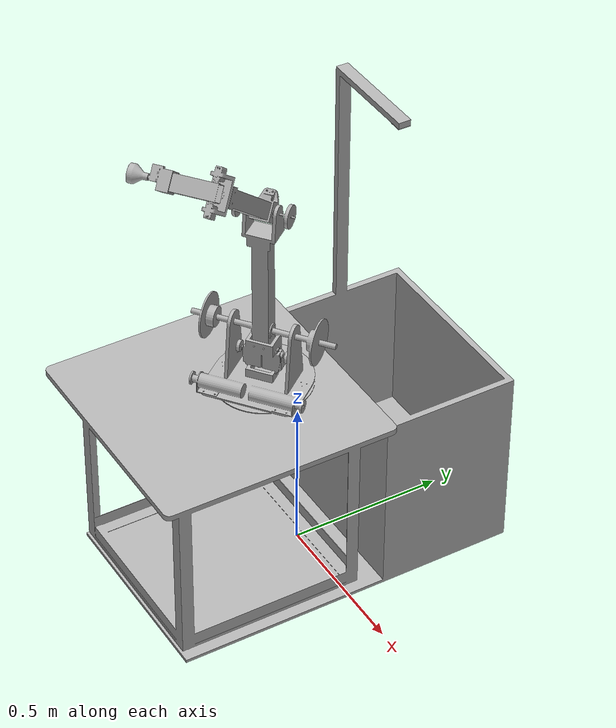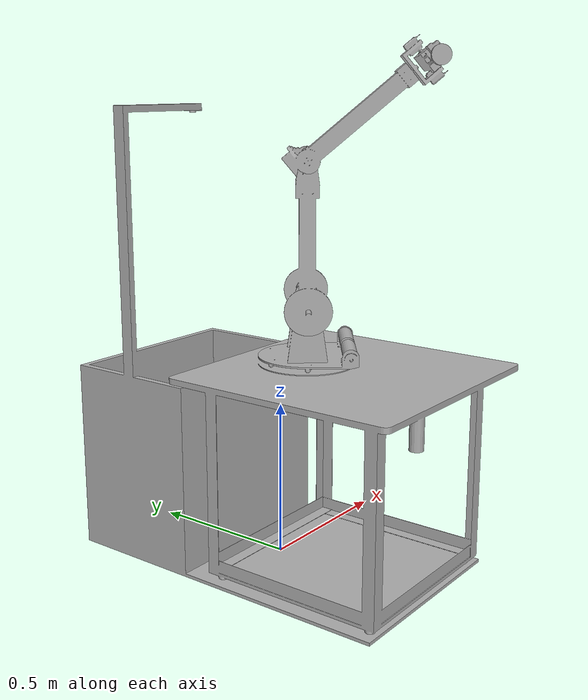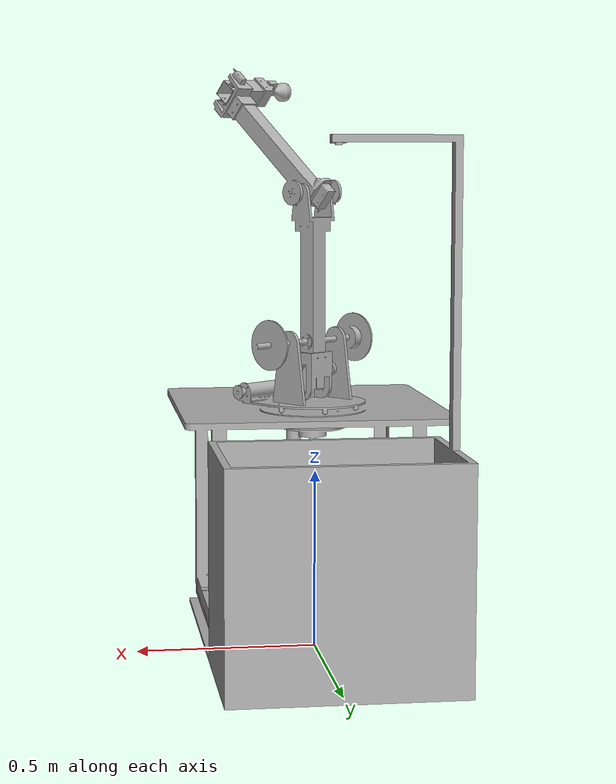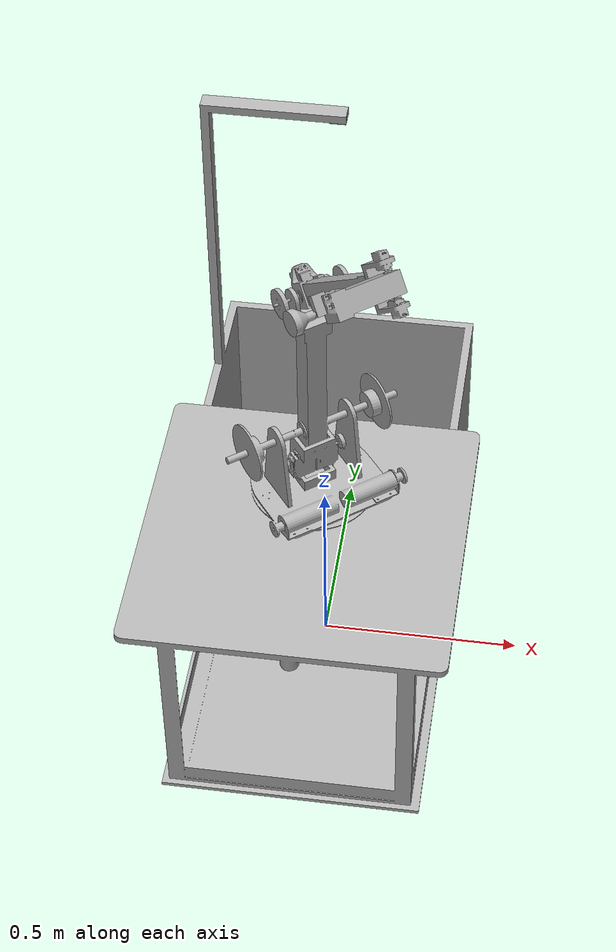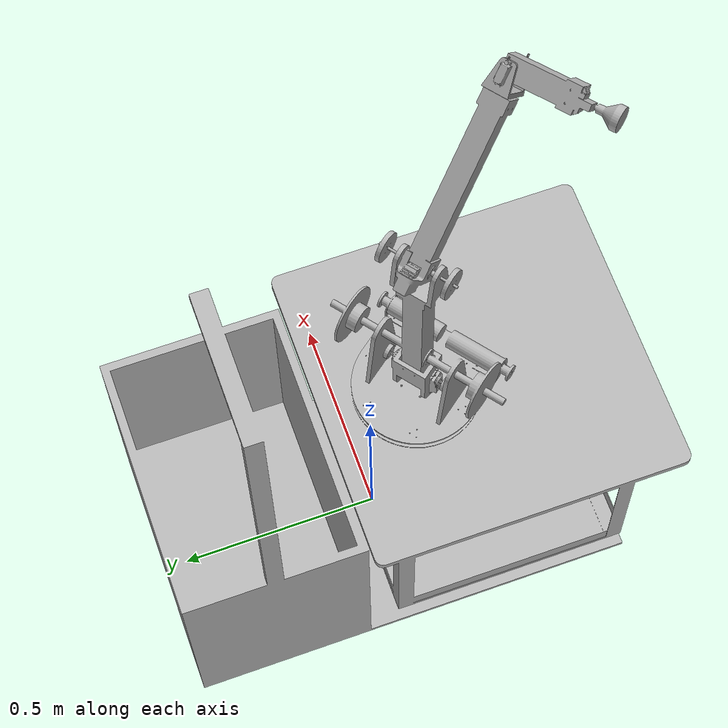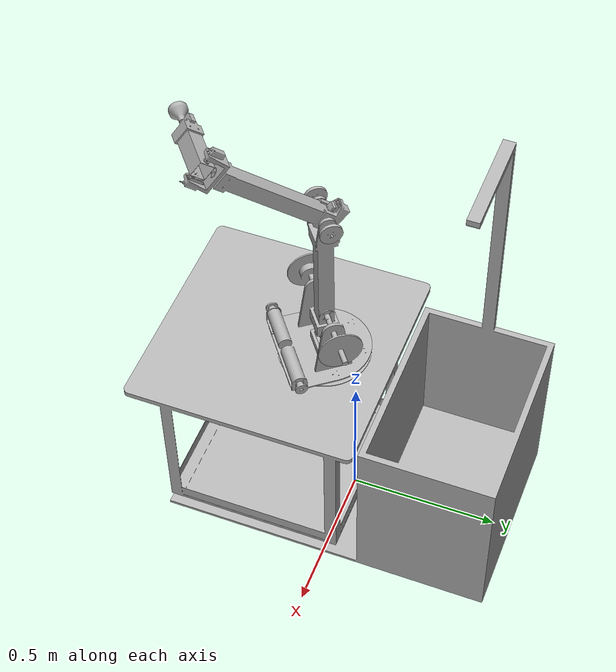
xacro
<?xml version="1.0" ?>
<robot name="da_vincibot" xmlns:xacro="http://www.ros.org/wiki/xacro">

<xacro:include filename="$(find da_vincibot_description)/urdf/materials.xacro" />
<xacro:include filename="$(find da_vincibot_description)/urdf/da_vincibot.trans" />
<xacro:include filename="$(find da_vincibot_description)/urdf/da_vincibot.gazebo" />

<link name="dummy">
   </link>
<joint name="dummy_joint" type="fixed">
     <parent link="dummy"/>
     <child link="base_link"/>
</joint>

<link name="base_link">
  <inertial>
    <origin xyz="-0.013780680089318771 0.29685490907620005 0.1796297335203369" rpy="0 0 0"/>
    <mass value="35.9352"/>
    <inertia ixx="3.30678" iyy="3.232001" izz="3.200963" ixy="0.006439" iyz="-0.268124" ixz="0.135672"/>
  </inertial>
  <visual>
    <origin xyz="0 0 0" rpy="0 0 0"/>
    <geometry>
      <mesh filename="package://da_vincibot_description/meshes/base_link.stl" scale="0.001 0.001 0.001"/>
    </geometry>
    <material name="silver"/>
  </visual>
  <collision>
    <origin xyz="0 0 0" rpy="0 0 0"/>
    <geometry>
      <mesh filename="package://da_vincibot_description/meshes/base_link.stl" scale="0.001 0.001 0.001"/>
    </geometry>
  </collision>
</link>

<link name="foundation_base_1">
  <inertial>
    <origin xyz="0.009586868297954514 -0.04216855497473093 0.47160422842803157" rpy="0 0 0"/>
    <mass value="118.48330496102017"/>
    <inertia ixx="13.892787" iyy="13.72668" izz="10.409594" ixy="-0.0" iyz="-0.004549" ixz="0.0"/>
  </inertial>
  <visual>
    <origin xyz="0.019174 0.220837 -0.01" rpy="0 0 0"/>
    <geometry>
      <mesh filename="package://da_vincibot_description/meshes/foundation_base_1.stl" scale="0.001 0.001 0.001"/>
    </geometry>
    <material name="silver"/>
  </visual>
  <collision>
    <origin xyz="0.019174 0.220837 -0.01" rpy="0 0 0"/>
    <geometry>
      <mesh filename="package://da_vincibot_description/meshes/foundation_base_1.stl" scale="0.001 0.001 0.001"/>
    </geometry>
  </collision>
</link>

<link name="shoulder_1">
  <inertial>
    <origin xyz="0.025755144680148674 -0.03339939669169957 0.036650849280556064" rpy="0 0 0"/>
    <mass value="12.004176876206436"/>
    <inertia ixx="0.118408" iyy="0.123788" izz="0.147792" ixy="-0.010234" iyz="0.004536" ixz="-0.003498"/>
  </inertial>
  <visual>
    <origin xyz="0.009587 0.110419 -0.661" rpy="0 0 0"/>
    <geometry>
      <mesh filename="package://da_vincibot_description/meshes/shoulder_1.stl" scale="0.001 0.001 0.001"/>
    </geometry>
    <material name="silver"/>
  </visual>
  <collision>
    <origin xyz="0.009587 0.110419 -0.661" rpy="0 0 0"/>
    <geometry>
      <mesh filename="package://da_vincibot_description/meshes/shoulder_1.stl" scale="0.001 0.001 0.001"/>
    </geometry>
  </collision>
</link>

<link name="forearm_1">
  <inertial>
    <origin xyz="0.07100778254631218 0.05529958973514852 0.04756542152195098" rpy="0 0 0"/>
    <mass value="3.191348499369228"/>
    <inertia ixx="0.110231" iyy="0.117188" izz="0.030159" ixy="-0.013234" iyz="7.3e-05" ixz="-5.6e-05"/>
  </inertial>
  <visual>
    <origin xyz="0.080858 0.165377 -0.8545" rpy="0 0 0"/>
    <geometry>
      <mesh filename="package://da_vincibot_description/meshes/forearm_1.stl" scale="0.001 0.001 0.001"/>
    </geometry>
    <material name="silver"/>
  </visual>
  <collision>
    <origin xyz="0.080858 0.165377 -0.8545" rpy="0 0 0"/>
    <geometry>
      <mesh filename="package://da_vincibot_description/meshes/forearm_1.stl" scale="0.001 0.001 0.001"/>
    </geometry>
  </collision>
</link>

<link name="hand_1">
  <inertial>
    <origin xyz="0.06847215720316376 -0.018647155150894656 0.05483920948448584" rpy="0 0 0"/>
    <mass value="1.0662125112424885"/>
    <inertia ixx="0.019715" iyy="0.016283" izz="0.016644" ixy="0.006528" iyz="0.00916" ixz="-0.007063"/>
  </inertial>
  <visual>
    <origin xyz="0.041263 0.134845 -1.2745" rpy="0 0 0"/>
    <geometry>
      <mesh filename="package://da_vincibot_description/meshes/hand_1.stl" scale="0.001 0.001 0.001"/>
    </geometry>
    <material name="silver"/>
  </visual>
  <collision>
    <origin xyz="0.041263 0.134845 -1.2745" rpy="0 0 0"/>
    <geometry>
      <mesh filename="package://da_vincibot_description/meshes/hand_1.stl" scale="0.001 0.001 0.001"/>
    </geometry>
  </collision>
</link>

<link name="hand_yaw_1">
  <inertial>
    <origin xyz="0.014374671356375074 -0.018641065652960254 0.019752517482224397" rpy="0 0 0"/>
    <mass value="0.19229044235074944"/>
    <inertia ixx="0.00039" iyy="0.000348" izz="0.000235" ixy="8.1e-05" iyz="-0.000115" ixz="8.9e-05"/>
  </inertial>
  <visual>
    <origin xyz="-0.175095 0.345273 -1.525187" rpy="0 0 0"/>
    <geometry>
      <mesh filename="package://da_vincibot_description/meshes/hand_yaw_1.stl" scale="0.001 0.001 0.001"/>
    </geometry>
    <material name="silver"/>
  </visual>
  <collision>
    <origin xyz="-0.175095 0.345273 -1.525187" rpy="0 0 0"/>
    <geometry>
      <mesh filename="package://da_vincibot_description/meshes/hand_yaw_1.stl" scale="0.001 0.001 0.001"/>
    </geometry>
  </collision>
</link>

<link name="end_effector_1">
  <inertial>
    <origin xyz="-0.13513566300895505 -0.08879838085005426 0.024916464751506773" rpy="0 0 0"/>
    <mass value="0.49047145154717503"/>
    <inertia ixx="0.000952" iyy="0.001273" izz="0.001944" ixy="-0.00082" iyz="2.2e-05" ixz="3.9e-05"/>
  </inertial>
  <visual>
    <origin xyz="-0.211088 0.391885 -1.541968" rpy="0 0 0"/>
    <geometry>
      <mesh filename="package://da_vincibot_description/meshes/end_effector_1.stl" scale="0.001 0.001 0.001"/>
    </geometry>
    <material name="silver"/>
  </visual>
  <collision>
    <origin xyz="-0.211088 0.391885 -1.541968" rpy="0 0 0"/>
    <geometry>
      <mesh filename="package://da_vincibot_description/meshes/end_effector_1.stl" scale="0.001 0.001 0.001"/>
    </geometry>
  </collision>
</link>

<link name="end_1">
  <inertial>
    <origin xyz="-3.878603250144497e-05 -3.171408265412179e-05 1.5213265980307256e-06" rpy="0 0 0"/>
    <mass value="0.00014967725498964528"/>
    <inertia ixx="0.0" iyy="0.0" izz="0.0" ixy="0.0" iyz="-0.0" ixz="-0.0"/>
  </inertial>
  <visual>
    <origin xyz="-0.016138 0.531822 -1.567211" rpy="0 0 0"/>
    <geometry>
      <mesh filename="package://da_vincibot_description/meshes/end_1.stl" scale="0.001 0.001 0.001"/>
    </geometry>
    <material name="silver"/>
  </visual>
  <collision>
    <origin xyz="-0.016138 0.531822 -1.567211" rpy="0 0 0"/>
    <geometry>
      <mesh filename="package://da_vincibot_description/meshes/end_1.stl" scale="0.001 0.001 0.001"/>
    </geometry>
  </collision>
</link>

<link name="arducam_v1_1">
  <inertial>
    <origin xyz="-0.020000131702510495 4.1679008455641764e-07 -0.0021523835366652477" rpy="0 0 0"/>
    <mass value="0.0047707963267949235"/>
    <inertia ixx="0.0" iyy="0.0" izz="1e-06" ixy="0.0" iyz="0.0" ixz="0.0"/>
  </inertial>
  <visual>
    <origin xyz="-0.010413 -0.339581 -1.41" rpy="0 0 0"/>
    <geometry>
      <mesh filename="package://da_vincibot_description/meshes/arducam_v1_1.stl" scale="0.001 0.001 0.001"/>
    </geometry>
    <material name="silver"/>
  </visual>
  <collision>
    <origin xyz="-0.010413 -0.339581 -1.41" rpy="0 0 0"/>
    <geometry>
      <mesh filename="package://da_vincibot_description/meshes/arducam_v1_1.stl" scale="0.001 0.001 0.001"/>
    </geometry>
  </collision>
</link>

<joint name="rigid2" type="fixed">
  <origin xyz="-0.019174 -0.220837 0.01" rpy="0 0 0"/>
  <parent link="base_link"/>
  <child link="foundation_base_1"/>
</joint>

<joint name="joint1_shoulder" type="revolute">
  <origin xyz="0.009587 0.110418 0.651" rpy="0 0 0"/>
  <parent link="foundation_base_1"/>
  <child link="shoulder_1"/>
  <axis xyz="0.0 -0.0 1.0"/>
  <limit upper="4.712389" lower="0.0" effort="100" velocity="100"/>
</joint>

<joint name="joint2_forearm" type="revolute">
  <origin xyz="-0.071271 -0.054958 0.1935" rpy="0 0 0"/>
  <parent link="shoulder_1"/>
  <child link="forearm_1"/>
  <axis xyz="0.7919 0.61065 0.0"/>
  <limit upper="2.094395" lower="0.0" effort="100" velocity="100"/>
</joint>

<joint name="joint3_hand" type="revolute">
  <origin xyz="0.039595 0.030532 0.42" rpy="0 0 0"/>
  <parent link="forearm_1"/>
  <child link="hand_1"/>
  <axis xyz="0.7919 0.61065 0.0"/>
  <limit upper="1.396263" lower="0.0" effort="100" velocity="100"/>
</joint>

<joint name="joint4_handyaw" type="revolute">
  <origin xyz="0.216358 -0.210428 0.250687" rpy="0 0 0"/>
  <parent link="hand_1"/>
  <child link="hand_yaw_1"/>
  <axis xyz="-0.467785 0.606631 -0.642788"/>
  <limit upper="3.141593" lower="0.0" effort="100" velocity="100"/>
</joint>

<joint name="joint5_end" type="revolute">
  <origin xyz="0.035993 -0.046612 0.016781" rpy="0 0 0"/>
  <parent link="hand_yaw_1"/>
  <child link="end_effector_1"/>
  <axis xyz="-0.393746 0.508076 0.766044"/>
  <limit upper="3.141593" lower="0.0" effort="100" velocity="100"/>
</joint>

<joint name="end_rigid" type="fixed">
  <origin xyz="-0.19495 -0.139937 0.025243" rpy="0 0 0"/>
  <parent link="end_effector_1"/>
  <child link="end_1"/>
</joint>

<joint name="rigid1" type="fixed">
  <origin xyz="0.010413 0.339581 1.41" rpy="0 0 0"/>
  <parent link="base_link"/>
  <child link="arducam_v1_1"/>
</joint>

</robot>

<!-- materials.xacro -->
<robot name="da_vincibot" xmlns:xacro="http://www.ros.org/wiki/xacro" >

<material name="silver">
  <color rgba="0.700 0.700 0.700 1.000"/>
</material>

</robot>

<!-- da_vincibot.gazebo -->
<robot name="da_vincibot" xmlns:xacro="http://www.ros.org/wiki/xacro" >

<xacro:property name="body_color" value="Gazebo/Silver" />

<gazebo>
  <plugin name="control" filename="libgazebo_ros_control.so"/>
</gazebo>
<gazebo reference="base_link">
  <material>${body_color}</material>
  <mu1>0.2</mu1>
  <mu2>0.2</mu2>
  <selfCollide>true</selfCollide>
  <gravity>true</gravity>
</gazebo>

<gazebo reference="foundation_base_1">
  <material>${body_color}</material>
  <mu1>0.2</mu1>
  <mu2>0.2</mu2>
  <selfCollide>true</selfCollide>
</gazebo>

<gazebo reference="shoulder_1">
  <material>${body_color}</material>
  <mu1>0.2</mu1>
  <mu2>0.2</mu2>
  <selfCollide>true</selfCollide>
</gazebo>

<gazebo reference="forearm_1">
  <material>${body_color}</material>
  <mu1>0.2</mu1>
  <mu2>0.2</mu2>
  <selfCollide>true</selfCollide>
</gazebo>

<gazebo reference="hand_1">
  <material>${body_color}</material>
  <mu1>0.2</mu1>
  <mu2>0.2</mu2>
  <selfCollide>true</selfCollide>
</gazebo>

<gazebo reference="hand_yaw_1">
  <material>${body_color}</material>
  <mu1>0.2</mu1>
  <mu2>0.2</mu2>
  <selfCollide>true</selfCollide>
</gazebo>

<gazebo reference="end_effector_1">
  <material>${body_color}</material>
  <mu1>0.2</mu1>
  <mu2>0.2</mu2>
  <selfCollide>true</selfCollide>
</gazebo>

<gazebo reference="end_1">
  <material>${body_color}</material>
  <mu1>0.2</mu1>
  <mu2>0.2</mu2>
  <selfCollide>true</selfCollide>
</gazebo>

<gazebo reference="arducam_v1_1">
  <material>${body_color}</material>
  <mu1>0.2</mu1>
  <mu2>0.2</mu2>
  <selfCollide>true</selfCollide>
</gazebo>

</robot>
